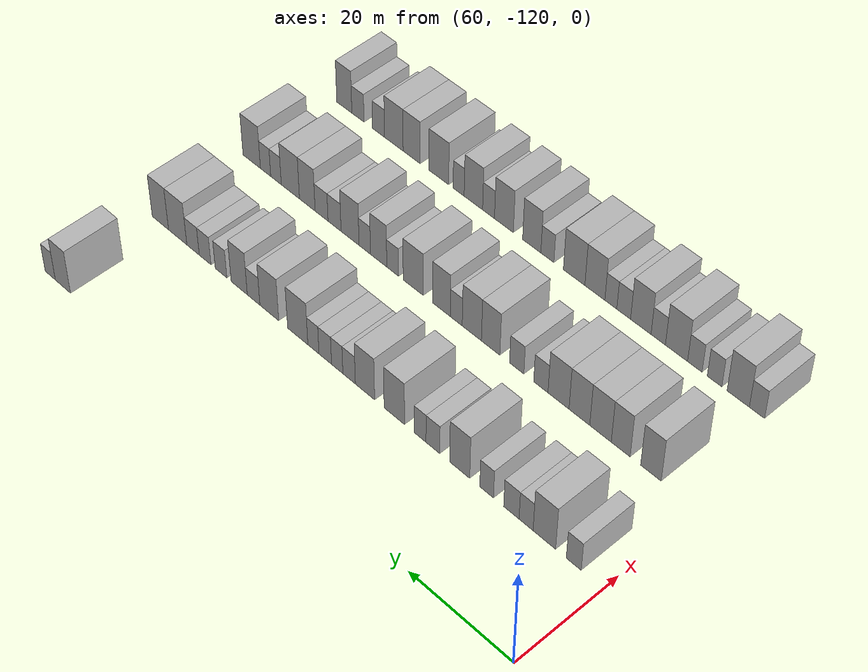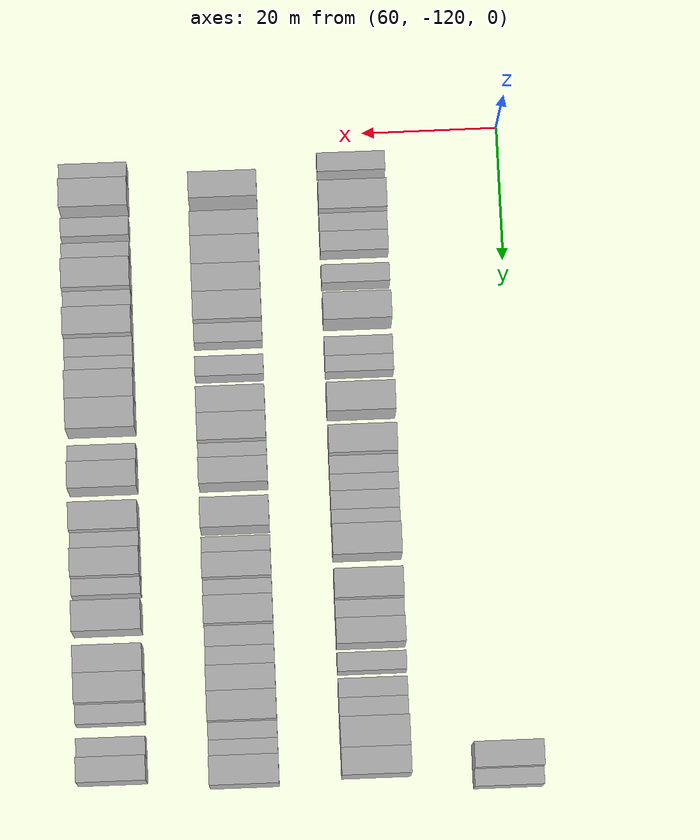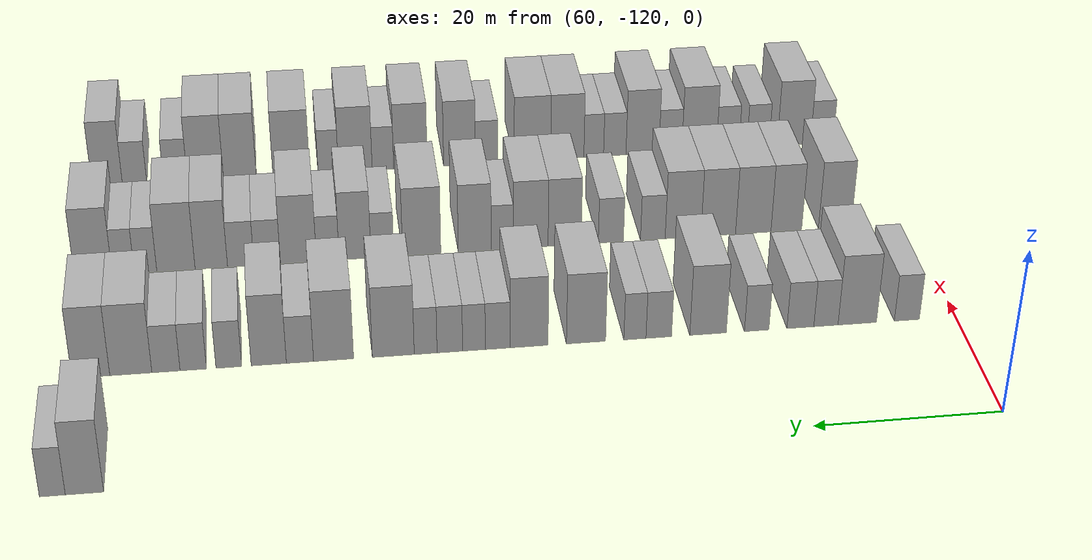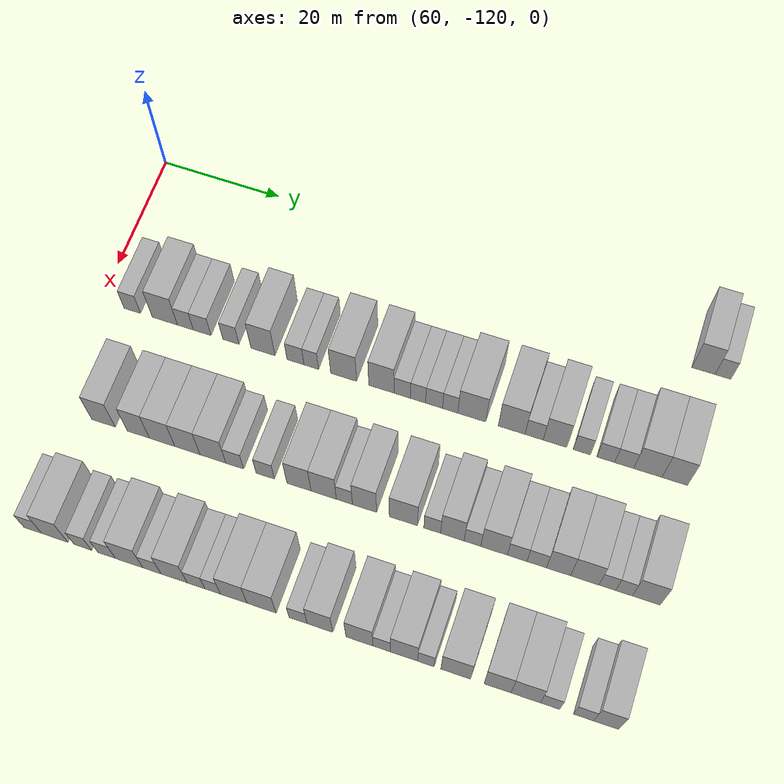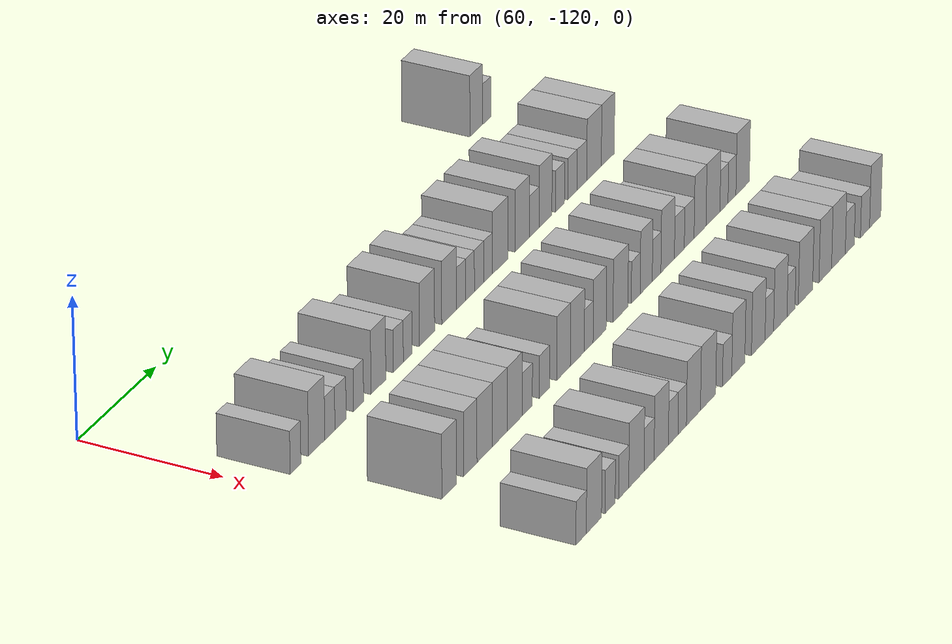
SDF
<sdf version="1.6">
 <world name="default">
  <model name="building_439">
   <static>1</static>
   <pose>63.0000 -26.5140 0 0.000000 0.000000 0.000000</pose>
   <link name="link">
    <pose>0 0 4.50 0 0 0</pose>
    <collision name="collision"><geometry><box><size>10.0000 3.7161 9.0000</size></box></geometry></collision>
    <visual name="visual">
     <cast_shadows>0</cast_shadows>
     <geometry><box><size>10.0000 3.7161 9.0000</size></box></geometry>
     <material>
      <script>
       <uri>model://HANNAS_wall/materials/scripts</uri>
       <uri>model://HANNAS_wall/materials/textures</uri>
       <name>vrc/HANNAS_wall</name>
      </script>
     </material>
    </visual>
   </link>
  </model>
  <model name="building_440">
   <static>1</static>
   <pose>63.0000 -23.4009 0 0.000000 0.000000 0.000000</pose>
   <link name="link">
    <pose>0 0 3.00 0 0 0</pose>
    <collision name="collision"><geometry><box><size>10.0000 2.5101 6.0000</size></box></geometry></collision>
    <visual name="visual">
     <cast_shadows>0</cast_shadows>
     <geometry><box><size>10.0000 2.5101 6.0000</size></box></geometry>
     <material>
      <script>
       <uri>model://HANNAS_wall/materials/scripts</uri>
       <uri>model://HANNAS_wall/materials/textures</uri>
       <name>vrc/HANNAS_wall</name>
      </script>
     </material>
    </visual>
   </link>
  </model>
  <model name="building_604">
   <static>1</static>
   <pose>82.0000 -114.4973 0 0.000000 0.000000 0.000000</pose>
   <link name="link">
    <pose>0 0 3.00 0 0 0</pose>
    <collision name="collision"><geometry><box><size>10.0000 2.8064 6.0000</size></box></geometry></collision>
    <visual name="visual">
     <cast_shadows>0</cast_shadows>
     <geometry><box><size>10.0000 2.8064 6.0000</size></box></geometry>
     <material>
      <script>
       <uri>model://HANNAS_wall/materials/scripts</uri>
       <uri>model://HANNAS_wall/materials/textures</uri>
       <name>vrc/HANNAS_wall</name>
      </script>
     </material>
    </visual>
   </link>
  </model>
  <model name="building_605">
   <static>1</static>
   <pose>82.0000 -108.9467 0 0.000000 0.000000 0.000000</pose>
   <link name="link">
    <pose>0 0 4.50 0 0 0</pose>
    <collision name="collision"><geometry><box><size>10.0000 4.2948 9.0000</size></box></geometry></collision>
    <visual name="visual">
     <cast_shadows>0</cast_shadows>
     <geometry><box><size>10.0000 4.2948 9.0000</size></box></geometry>
     <material>
      <script>
       <uri>model://HANNAS_wall/materials/scripts</uri>
       <uri>model://HANNAS_wall/materials/textures</uri>
       <name>vrc/HANNAS_wall</name>
      </script>
     </material>
    </visual>
   </link>
  </model>
  <model name="building_606">
   <static>1</static>
   <pose>82.0000 -105.4495 0 0.000000 0.000000 0.000000</pose>
   <link name="link">
    <pose>0 0 3.00 0 0 0</pose>
    <collision name="collision"><geometry><box><size>10.0000 2.6997 6.0000</size></box></geometry></collision>
    <visual name="visual">
     <cast_shadows>0</cast_shadows>
     <geometry><box><size>10.0000 2.6997 6.0000</size></box></geometry>
     <material>
      <script>
       <uri>model://HANNAS_wall/materials/scripts</uri>
       <uri>model://HANNAS_wall/materials/textures</uri>
       <name>vrc/HANNAS_wall</name>
      </script>
     </material>
    </visual>
   </link>
  </model>
  <model name="building_607">
   <static>1</static>
   <pose>82.0000 -102.6071 0 0.000000 0.000000 0.000000</pose>
   <link name="link">
    <pose>0 0 3.00 0 0 0</pose>
    <collision name="collision"><geometry><box><size>10.0000 2.9852 6.0000</size></box></geometry></collision>
    <visual name="visual">
     <cast_shadows>0</cast_shadows>
     <geometry><box><size>10.0000 2.9852 6.0000</size></box></geometry>
     <material>
      <script>
       <uri>model://HANNAS_wall/materials/scripts</uri>
       <uri>model://HANNAS_wall/materials/textures</uri>
       <name>vrc/HANNAS_wall</name>
      </script>
     </material>
    </visual>
   </link>
  </model>
  <model name="building_608">
   <static>1</static>
   <pose>82.0000 -97.7622 0 0.000000 0.000000 0.000000</pose>
   <link name="link">
    <pose>0 0 3.00 0 0 0</pose>
    <collision name="collision"><geometry><box><size>10.0000 2.7046 6.0000</size></box></geometry></collision>
    <visual name="visual">
     <cast_shadows>0</cast_shadows>
     <geometry><box><size>10.0000 2.7046 6.0000</size></box></geometry>
     <material>
      <script>
       <uri>model://HANNAS_wall/materials/scripts</uri>
       <uri>model://HANNAS_wall/materials/textures</uri>
       <name>vrc/HANNAS_wall</name>
      </script>
     </material>
    </visual>
   </link>
  </model>
  <model name="building_609">
   <static>1</static>
   <pose>82.0000 -92.3943 0 0.000000 0.000000 0.000000</pose>
   <link name="link">
    <pose>0 0 4.50 0 0 0</pose>
    <collision name="collision"><geometry><box><size>10.0000 4.0311 9.0000</size></box></geometry></collision>
    <visual name="visual">
     <cast_shadows>0</cast_shadows>
     <geometry><box><size>10.0000 4.0311 9.0000</size></box></geometry>
     <material>
      <script>
       <uri>model://HANNAS_wall/materials/scripts</uri>
       <uri>model://HANNAS_wall/materials/textures</uri>
       <name>vrc/HANNAS_wall</name>
      </script>
     </material>
    </visual>
   </link>
  </model>
  <model name="building_610">
   <static>1</static>
   <pose>82.0000 -86.9750 0 0.000000 0.000000 0.000000</pose>
   <link name="link">
    <pose>0 0 3.00 0 0 0</pose>
    <collision name="collision"><geometry><box><size>10.0000 2.8075 6.0000</size></box></geometry></collision>
    <visual name="visual">
     <cast_shadows>0</cast_shadows>
     <geometry><box><size>10.0000 2.8075 6.0000</size></box></geometry>
     <material>
      <script>
       <uri>model://HANNAS_wall/materials/scripts</uri>
       <uri>model://HANNAS_wall/materials/textures</uri>
       <name>vrc/HANNAS_wall</name>
      </script>
     </material>
    </visual>
   </link>
  </model>
  <model name="building_611">
   <static>1</static>
   <pose>82.0000 -84.3604 0 0.000000 0.000000 0.000000</pose>
   <link name="link">
    <pose>0 0 3.00 0 0 0</pose>
    <collision name="collision"><geometry><box><size>10.0000 2.4218 6.0000</size></box></geometry></collision>
    <visual name="visual">
     <cast_shadows>0</cast_shadows>
     <geometry><box><size>10.0000 2.4218 6.0000</size></box></geometry>
     <material>
      <script>
       <uri>model://HANNAS_wall/materials/scripts</uri>
       <uri>model://HANNAS_wall/materials/textures</uri>
       <name>vrc/HANNAS_wall</name>
      </script>
     </material>
    </visual>
   </link>
  </model>
  <model name="building_612">
   <static>1</static>
   <pose>82.0000 -79.0186 0 0.000000 0.000000 0.000000</pose>
   <link name="link">
    <pose>0 0 4.50 0 0 0</pose>
    <collision name="collision"><geometry><box><size>10.0000 4.2618 9.0000</size></box></geometry></collision>
    <visual name="visual">
     <cast_shadows>0</cast_shadows>
     <geometry><box><size>10.0000 4.2618 9.0000</size></box></geometry>
     <material>
      <script>
       <uri>model://HANNAS_wall/materials/scripts</uri>
       <uri>model://HANNAS_wall/materials/textures</uri>
       <name>vrc/HANNAS_wall</name>
      </script>
     </material>
    </visual>
   </link>
  </model>
  <model name="building_613">
   <static>1</static>
   <pose>82.0000 -72.8369 0 0.000000 0.000000 0.000000</pose>
   <link name="link">
    <pose>0 0 4.50 0 0 0</pose>
    <collision name="collision"><geometry><box><size>10.0000 4.1015 9.0000</size></box></geometry></collision>
    <visual name="visual">
     <cast_shadows>0</cast_shadows>
     <geometry><box><size>10.0000 4.1015 9.0000</size></box></geometry>
     <material>
      <script>
       <uri>model://HANNAS_wall/materials/scripts</uri>
       <uri>model://HANNAS_wall/materials/textures</uri>
       <name>vrc/HANNAS_wall</name>
      </script>
     </material>
    </visual>
   </link>
  </model>
  <model name="building_614">
   <static>1</static>
   <pose>82.0000 -69.4420 0 0.000000 0.000000 0.000000</pose>
   <link name="link">
    <pose>0 0 3.00 0 0 0</pose>
    <collision name="collision"><geometry><box><size>10.0000 2.6884 6.0000</size></box></geometry></collision>
    <visual name="visual">
     <cast_shadows>0</cast_shadows>
     <geometry><box><size>10.0000 2.6884 6.0000</size></box></geometry>
     <material>
      <script>
       <uri>model://HANNAS_wall/materials/scripts</uri>
       <uri>model://HANNAS_wall/materials/textures</uri>
       <name>vrc/HANNAS_wall</name>
      </script>
     </material>
    </visual>
   </link>
  </model>
  <model name="building_615">
   <static>1</static>
   <pose>82.0000 -66.8742 0 0.000000 0.000000 0.000000</pose>
   <link name="link">
    <pose>0 0 3.00 0 0 0</pose>
    <collision name="collision"><geometry><box><size>10.0000 2.4471 6.0000</size></box></geometry></collision>
    <visual name="visual">
     <cast_shadows>0</cast_shadows>
     <geometry><box><size>10.0000 2.4471 6.0000</size></box></geometry>
     <material>
      <script>
       <uri>model://HANNAS_wall/materials/scripts</uri>
       <uri>model://HANNAS_wall/materials/textures</uri>
       <name>vrc/HANNAS_wall</name>
      </script>
     </material>
    </visual>
   </link>
  </model>
  <model name="building_616">
   <static>1</static>
   <pose>82.0000 -64.2776 0 0.000000 0.000000 0.000000</pose>
   <link name="link">
    <pose>0 0 3.00 0 0 0</pose>
    <collision name="collision"><geometry><box><size>10.0000 2.7462 6.0000</size></box></geometry></collision>
    <visual name="visual">
     <cast_shadows>0</cast_shadows>
     <geometry><box><size>10.0000 2.7462 6.0000</size></box></geometry>
     <material>
      <script>
       <uri>model://HANNAS_wall/materials/scripts</uri>
       <uri>model://HANNAS_wall/materials/textures</uri>
       <name>vrc/HANNAS_wall</name>
      </script>
     </material>
    </visual>
   </link>
  </model>
  <model name="building_617">
   <static>1</static>
   <pose>82.0000 -61.6796 0 0.000000 0.000000 0.000000</pose>
   <link name="link">
    <pose>0 0 3.00 0 0 0</pose>
    <collision name="collision"><geometry><box><size>10.0000 2.4497 6.0000</size></box></geometry></collision>
    <visual name="visual">
     <cast_shadows>0</cast_shadows>
     <geometry><box><size>10.0000 2.4497 6.0000</size></box></geometry>
     <material>
      <script>
       <uri>model://HANNAS_wall/materials/scripts</uri>
       <uri>model://HANNAS_wall/materials/textures</uri>
       <name>vrc/HANNAS_wall</name>
      </script>
     </material>
    </visual>
   </link>
  </model>
  <model name="building_618">
   <static>1</static>
   <pose>82.0000 -58.2125 0 0.000000 0.000000 0.000000</pose>
   <link name="link">
    <pose>0 0 4.50 0 0 0</pose>
    <collision name="collision"><geometry><box><size>10.0000 4.4845 9.0000</size></box></geometry></collision>
    <visual name="visual">
     <cast_shadows>0</cast_shadows>
     <geometry><box><size>10.0000 4.4845 9.0000</size></box></geometry>
     <material>
      <script>
       <uri>model://HANNAS_wall/materials/scripts</uri>
       <uri>model://HANNAS_wall/materials/textures</uri>
       <name>vrc/HANNAS_wall</name>
      </script>
     </material>
    </visual>
   </link>
  </model>
  <model name="building_619">
   <static>1</static>
   <pose>82.0000 -51.8386 0 0.000000 0.000000 0.000000</pose>
   <link name="link">
    <pose>0 0 4.50 0 0 0</pose>
    <collision name="collision"><geometry><box><size>10.0000 4.2635 9.0000</size></box></geometry></collision>
    <visual name="visual">
     <cast_shadows>0</cast_shadows>
     <geometry><box><size>10.0000 4.2635 9.0000</size></box></geometry>
     <material>
      <script>
       <uri>model://HANNAS_wall/materials/scripts</uri>
       <uri>model://HANNAS_wall/materials/textures</uri>
       <name>vrc/HANNAS_wall</name>
      </script>
     </material>
    </visual>
   </link>
  </model>
  <model name="building_620">
   <static>1</static>
   <pose>82.0000 -48.2661 0 0.000000 0.000000 0.000000</pose>
   <link name="link">
    <pose>0 0 3.00 0 0 0</pose>
    <collision name="collision"><geometry><box><size>10.0000 2.8814 6.0000</size></box></geometry></collision>
    <visual name="visual">
     <cast_shadows>0</cast_shadows>
     <geometry><box><size>10.0000 2.8814 6.0000</size></box></geometry>
     <material>
      <script>
       <uri>model://HANNAS_wall/materials/scripts</uri>
       <uri>model://HANNAS_wall/materials/textures</uri>
       <name>vrc/HANNAS_wall</name>
      </script>
     </material>
    </visual>
   </link>
  </model>
  <model name="building_621">
   <static>1</static>
   <pose>82.0000 -44.9633 0 0.000000 0.000000 0.000000</pose>
   <link name="link">
    <pose>0 0 4.50 0 0 0</pose>
    <collision name="collision"><geometry><box><size>10.0000 3.7242 9.0000</size></box></geometry></collision>
    <visual name="visual">
     <cast_shadows>0</cast_shadows>
     <geometry><box><size>10.0000 3.7242 9.0000</size></box></geometry>
     <material>
      <script>
       <uri>model://HANNAS_wall/materials/scripts</uri>
       <uri>model://HANNAS_wall/materials/textures</uri>
       <name>vrc/HANNAS_wall</name>
      </script>
     </material>
    </visual>
   </link>
  </model>
  <model name="building_622">
   <static>1</static>
   <pose>82.0000 -40.7424 0 0.000000 0.000000 0.000000</pose>
   <link name="link">
    <pose>0 0 3.00 0 0 0</pose>
    <collision name="collision"><geometry><box><size>10.0000 2.7176 6.0000</size></box></geometry></collision>
    <visual name="visual">
     <cast_shadows>0</cast_shadows>
     <geometry><box><size>10.0000 2.7176 6.0000</size></box></geometry>
     <material>
      <script>
       <uri>model://HANNAS_wall/materials/scripts</uri>
       <uri>model://HANNAS_wall/materials/textures</uri>
       <name>vrc/HANNAS_wall</name>
      </script>
     </material>
    </visual>
   </link>
  </model>
  <model name="building_623">
   <static>1</static>
   <pose>82.0000 -36.9959 0 0.000000 0.000000 0.000000</pose>
   <link name="link">
    <pose>0 0 3.00 0 0 0</pose>
    <collision name="collision"><geometry><box><size>10.0000 2.7754 6.0000</size></box></geometry></collision>
    <visual name="visual">
     <cast_shadows>0</cast_shadows>
     <geometry><box><size>10.0000 2.7754 6.0000</size></box></geometry>
     <material>
      <script>
       <uri>model://HANNAS_wall/materials/scripts</uri>
       <uri>model://HANNAS_wall/materials/textures</uri>
       <name>vrc/HANNAS_wall</name>
      </script>
     </material>
    </visual>
   </link>
  </model>
  <model name="building_624">
   <static>1</static>
   <pose>82.0000 -34.1287 0 0.000000 0.000000 0.000000</pose>
   <link name="link">
    <pose>0 0 3.00 0 0 0</pose>
    <collision name="collision"><geometry><box><size>10.0000 2.9592 6.0000</size></box></geometry></collision>
    <visual name="visual">
     <cast_shadows>0</cast_shadows>
     <geometry><box><size>10.0000 2.9592 6.0000</size></box></geometry>
     <material>
      <script>
       <uri>model://HANNAS_wall/materials/scripts</uri>
       <uri>model://HANNAS_wall/materials/textures</uri>
       <name>vrc/HANNAS_wall</name>
      </script>
     </material>
    </visual>
   </link>
  </model>
  <model name="building_625">
   <static>1</static>
   <pose>82.0000 -30.4496 0 0.000000 0.000000 0.000000</pose>
   <link name="link">
    <pose>0 0 4.50 0 0 0</pose>
    <collision name="collision"><geometry><box><size>10.0000 4.3990 9.0000</size></box></geometry></collision>
    <visual name="visual">
     <cast_shadows>0</cast_shadows>
     <geometry><box><size>10.0000 4.3990 9.0000</size></box></geometry>
     <material>
      <script>
       <uri>model://HANNAS_wall/materials/scripts</uri>
       <uri>model://HANNAS_wall/materials/textures</uri>
       <name>vrc/HANNAS_wall</name>
      </script>
     </material>
    </visual>
   </link>
  </model>
  <model name="building_626">
   <static>1</static>
   <pose>82.0000 -26.2749 0 0.000000 0.000000 0.000000</pose>
   <link name="link">
    <pose>0 0 4.50 0 0 0</pose>
    <collision name="collision"><geometry><box><size>10.0000 3.9504 9.0000</size></box></geometry></collision>
    <visual name="visual">
     <cast_shadows>0</cast_shadows>
     <geometry><box><size>10.0000 3.9504 9.0000</size></box></geometry>
     <material>
      <script>
       <uri>model://HANNAS_wall/materials/scripts</uri>
       <uri>model://HANNAS_wall/materials/textures</uri>
       <name>vrc/HANNAS_wall</name>
      </script>
     </material>
    </visual>
   </link>
  </model>
  <model name="building_788">
   <static>1</static>
   <pose>101.0000 -111.1524 0 0.000000 0.000000 0.000000</pose>
   <link name="link">
    <pose>0 0 4.50 0 0 0</pose>
    <collision name="collision"><geometry><box><size>10.0000 3.8929 9.0000</size></box></geometry></collision>
    <visual name="visual">
     <cast_shadows>0</cast_shadows>
     <geometry><box><size>10.0000 3.8929 9.0000</size></box></geometry>
     <material>
      <script>
       <uri>model://HANNAS_wall/materials/scripts</uri>
       <uri>model://HANNAS_wall/materials/textures</uri>
       <name>vrc/HANNAS_wall</name>
      </script>
     </material>
    </visual>
   </link>
  </model>
  <model name="building_789">
   <static>1</static>
   <pose>101.0000 -105.3858 0 0.000000 0.000000 0.000000</pose>
   <link name="link">
    <pose>0 0 4.50 0 0 0</pose>
    <collision name="collision"><geometry><box><size>10.0000 3.6404 9.0000</size></box></geometry></collision>
    <visual name="visual">
     <cast_shadows>0</cast_shadows>
     <geometry><box><size>10.0000 3.6404 9.0000</size></box></geometry>
     <material>
      <script>
       <uri>model://HANNAS_wall/materials/scripts</uri>
       <uri>model://HANNAS_wall/materials/textures</uri>
       <name>vrc/HANNAS_wall</name>
      </script>
     </material>
    </visual>
   </link>
  </model>
  <model name="building_790">
   <static>1</static>
   <pose>101.0000 -101.4711 0 0.000000 0.000000 0.000000</pose>
   <link name="link">
    <pose>0 0 4.50 0 0 0</pose>
    <collision name="collision"><geometry><box><size>10.0000 4.1890 9.0000</size></box></geometry></collision>
    <visual name="visual">
     <cast_shadows>0</cast_shadows>
     <geometry><box><size>10.0000 4.1890 9.0000</size></box></geometry>
     <material>
      <script>
       <uri>model://HANNAS_wall/materials/scripts</uri>
       <uri>model://HANNAS_wall/materials/textures</uri>
       <name>vrc/HANNAS_wall</name>
      </script>
     </material>
    </visual>
   </link>
  </model>
  <model name="building_791">
   <static>1</static>
   <pose>101.0000 -97.3296 0 0.000000 0.000000 0.000000</pose>
   <link name="link">
    <pose>0 0 4.50 0 0 0</pose>
    <collision name="collision"><geometry><box><size>10.0000 4.0942 9.0000</size></box></geometry></collision>
    <visual name="visual">
     <cast_shadows>0</cast_shadows>
     <geometry><box><size>10.0000 4.0942 9.0000</size></box></geometry>
     <material>
      <script>
       <uri>model://HANNAS_wall/materials/scripts</uri>
       <uri>model://HANNAS_wall/materials/textures</uri>
       <name>vrc/HANNAS_wall</name>
      </script>
     </material>
    </visual>
   </link>
  </model>
  <model name="building_792">
   <static>1</static>
   <pose>101.0000 -93.1846 0 0.000000 0.000000 0.000000</pose>
   <link name="link">
    <pose>0 0 4.50 0 0 0</pose>
    <collision name="collision"><geometry><box><size>10.0000 4.1958 9.0000</size></box></geometry></collision>
    <visual name="visual">
     <cast_shadows>0</cast_shadows>
     <geometry><box><size>10.0000 4.1958 9.0000</size></box></geometry>
     <material>
      <script>
       <uri>model://HANNAS_wall/materials/scripts</uri>
       <uri>model://HANNAS_wall/materials/textures</uri>
       <name>vrc/HANNAS_wall</name>
      </script>
     </material>
    </visual>
   </link>
  </model>
  <model name="building_793">
   <static>1</static>
   <pose>101.0000 -89.6413 0 0.000000 0.000000 0.000000</pose>
   <link name="link">
    <pose>0 0 3.00 0 0 0</pose>
    <collision name="collision"><geometry><box><size>10.0000 2.8908 6.0000</size></box></geometry></collision>
    <visual name="visual">
     <cast_shadows>0</cast_shadows>
     <geometry><box><size>10.0000 2.8908 6.0000</size></box></geometry>
     <material>
      <script>
       <uri>model://HANNAS_wall/materials/scripts</uri>
       <uri>model://HANNAS_wall/materials/textures</uri>
       <name>vrc/HANNAS_wall</name>
      </script>
     </material>
    </visual>
   </link>
  </model>
  <model name="building_794">
   <static>1</static>
   <pose>101.0000 -84.7285 0 0.000000 0.000000 0.000000</pose>
   <link name="link">
    <pose>0 0 3.00 0 0 0</pose>
    <collision name="collision"><geometry><box><size>10.0000 2.9348 6.0000</size></box></geometry></collision>
    <visual name="visual">
     <cast_shadows>0</cast_shadows>
     <geometry><box><size>10.0000 2.9348 6.0000</size></box></geometry>
     <material>
      <script>
       <uri>model://HANNAS_wall/materials/scripts</uri>
       <uri>model://HANNAS_wall/materials/textures</uri>
       <name>vrc/HANNAS_wall</name>
      </script>
     </material>
    </visual>
   </link>
  </model>
  <model name="building_795">
   <static>1</static>
   <pose>101.0000 -79.3390 0 0.000000 0.000000 0.000000</pose>
   <link name="link">
    <pose>0 0 4.50 0 0 0</pose>
    <collision name="collision"><geometry><box><size>10.0000 3.8440 9.0000</size></box></geometry></collision>
    <visual name="visual">
     <cast_shadows>0</cast_shadows>
     <geometry><box><size>10.0000 3.8440 9.0000</size></box></geometry>
     <material>
      <script>
       <uri>model://HANNAS_wall/materials/scripts</uri>
       <uri>model://HANNAS_wall/materials/textures</uri>
       <name>vrc/HANNAS_wall</name>
      </script>
     </material>
    </visual>
   </link>
  </model>
  <model name="building_796">
   <static>1</static>
   <pose>101.0000 -75.3961 0 0.000000 0.000000 0.000000</pose>
   <link name="link">
    <pose>0 0 4.50 0 0 0</pose>
    <collision name="collision"><geometry><box><size>10.0000 4.0419 9.0000</size></box></geometry></collision>
    <visual name="visual">
     <cast_shadows>0</cast_shadows>
     <geometry><box><size>10.0000 4.0419 9.0000</size></box></geometry>
     <material>
      <script>
       <uri>model://HANNAS_wall/materials/scripts</uri>
       <uri>model://HANNAS_wall/materials/textures</uri>
       <name>vrc/HANNAS_wall</name>
      </script>
     </material>
    </visual>
   </link>
  </model>
  <model name="building_797">
   <static>1</static>
   <pose>101.0000 -72.1025 0 0.000000 0.000000 0.000000</pose>
   <link name="link">
    <pose>0 0 3.00 0 0 0</pose>
    <collision name="collision"><geometry><box><size>10.0000 2.5452 6.0000</size></box></geometry></collision>
    <visual name="visual">
     <cast_shadows>0</cast_shadows>
     <geometry><box><size>10.0000 2.5452 6.0000</size></box></geometry>
     <material>
      <script>
       <uri>model://HANNAS_wall/materials/scripts</uri>
       <uri>model://HANNAS_wall/materials/textures</uri>
       <name>vrc/HANNAS_wall</name>
      </script>
     </material>
    </visual>
   </link>
  </model>
  <model name="building_798">
   <static>1</static>
   <pose>101.0000 -68.9304 0 0.000000 0.000000 0.000000</pose>
   <link name="link">
    <pose>0 0 4.50 0 0 0</pose>
    <collision name="collision"><geometry><box><size>10.0000 3.7990 9.0000</size></box></geometry></collision>
    <visual name="visual">
     <cast_shadows>0</cast_shadows>
     <geometry><box><size>10.0000 3.7990 9.0000</size></box></geometry>
     <material>
      <script>
       <uri>model://HANNAS_wall/materials/scripts</uri>
       <uri>model://HANNAS_wall/materials/textures</uri>
       <name>vrc/HANNAS_wall</name>
      </script>
     </material>
    </visual>
   </link>
  </model>
  <model name="building_799">
   <static>1</static>
   <pose>101.0000 -62.8367 0 0.000000 0.000000 0.000000</pose>
   <link name="link">
    <pose>0 0 4.50 0 0 0</pose>
    <collision name="collision"><geometry><box><size>10.0000 4.3884 9.0000</size></box></geometry></collision>
    <visual name="visual">
     <cast_shadows>0</cast_shadows>
     <geometry><box><size>10.0000 4.3884 9.0000</size></box></geometry>
     <material>
      <script>
       <uri>model://HANNAS_wall/materials/scripts</uri>
       <uri>model://HANNAS_wall/materials/textures</uri>
       <name>vrc/HANNAS_wall</name>
      </script>
     </material>
    </visual>
   </link>
  </model>
  <model name="building_800">
   <static>1</static>
   <pose>101.0000 -58.3310 0 0.000000 0.000000 0.000000</pose>
   <link name="link">
    <pose>0 0 3.00 0 0 0</pose>
    <collision name="collision"><geometry><box><size>10.0000 2.6231 6.0000</size></box></geometry></collision>
    <visual name="visual">
     <cast_shadows>0</cast_shadows>
     <geometry><box><size>10.0000 2.6231 6.0000</size></box></geometry>
     <material>
      <script>
       <uri>model://HANNAS_wall/materials/scripts</uri>
       <uri>model://HANNAS_wall/materials/textures</uri>
       <name>vrc/HANNAS_wall</name>
      </script>
     </material>
    </visual>
   </link>
  </model>
  <model name="building_801">
   <static>1</static>
   <pose>101.0000 -55.2051 0 0.000000 0.000000 0.000000</pose>
   <link name="link">
    <pose>0 0 4.50 0 0 0</pose>
    <collision name="collision"><geometry><box><size>10.0000 3.6287 9.0000</size></box></geometry></collision>
    <visual name="visual">
     <cast_shadows>0</cast_shadows>
     <geometry><box><size>10.0000 3.6287 9.0000</size></box></geometry>
     <material>
      <script>
       <uri>model://HANNAS_wall/materials/scripts</uri>
       <uri>model://HANNAS_wall/materials/textures</uri>
       <name>vrc/HANNAS_wall</name>
      </script>
     </material>
    </visual>
   </link>
  </model>
  <model name="building_802">
   <static>1</static>
   <pose>101.0000 -52.1007 0 0.000000 0.000000 0.000000</pose>
   <link name="link">
    <pose>0 0 3.00 0 0 0</pose>
    <collision name="collision"><geometry><box><size>10.0000 2.5800 6.0000</size></box></geometry></collision>
    <visual name="visual">
     <cast_shadows>0</cast_shadows>
     <geometry><box><size>10.0000 2.5800 6.0000</size></box></geometry>
     <material>
      <script>
       <uri>model://HANNAS_wall/materials/scripts</uri>
       <uri>model://HANNAS_wall/materials/textures</uri>
       <name>vrc/HANNAS_wall</name>
      </script>
     </material>
    </visual>
   </link>
  </model>
  <model name="building_803">
   <static>1</static>
   <pose>101.0000 -48.7690 0 0.000000 0.000000 0.000000</pose>
   <link name="link">
    <pose>0 0 4.50 0 0 0</pose>
    <collision name="collision"><geometry><box><size>10.0000 4.0835 9.0000</size></box></geometry></collision>
    <visual name="visual">
     <cast_shadows>0</cast_shadows>
     <geometry><box><size>10.0000 4.0835 9.0000</size></box></geometry>
     <material>
      <script>
       <uri>model://HANNAS_wall/materials/scripts</uri>
       <uri>model://HANNAS_wall/materials/textures</uri>
       <name>vrc/HANNAS_wall</name>
      </script>
     </material>
    </visual>
   </link>
  </model>
  <model name="building_804">
   <static>1</static>
   <pose>101.0000 -45.2300 0 0.000000 0.000000 0.000000</pose>
   <link name="link">
    <pose>0 0 3.00 0 0 0</pose>
    <collision name="collision"><geometry><box><size>10.0000 2.9944 6.0000</size></box></geometry></collision>
    <visual name="visual">
     <cast_shadows>0</cast_shadows>
     <geometry><box><size>10.0000 2.9944 6.0000</size></box></geometry>
     <material>
      <script>
       <uri>model://HANNAS_wall/materials/scripts</uri>
       <uri>model://HANNAS_wall/materials/textures</uri>
       <name>vrc/HANNAS_wall</name>
      </script>
     </material>
    </visual>
   </link>
  </model>
  <model name="building_805">
   <static>1</static>
   <pose>101.0000 -42.2397 0 0.000000 0.000000 0.000000</pose>
   <link name="link">
    <pose>0 0 3.00 0 0 0</pose>
    <collision name="collision"><geometry><box><size>10.0000 2.9863 6.0000</size></box></geometry></collision>
    <visual name="visual">
     <cast_shadows>0</cast_shadows>
     <geometry><box><size>10.0000 2.9863 6.0000</size></box></geometry>
     <material>
      <script>
       <uri>model://HANNAS_wall/materials/scripts</uri>
       <uri>model://HANNAS_wall/materials/textures</uri>
       <name>vrc/HANNAS_wall</name>
      </script>
     </material>
    </visual>
   </link>
  </model>
  <model name="building_806">
   <static>1</static>
   <pose>101.0000 -38.9179 0 0.000000 0.000000 0.000000</pose>
   <link name="link">
    <pose>0 0 4.50 0 0 0</pose>
    <collision name="collision"><geometry><box><size>10.0000 3.6572 9.0000</size></box></geometry></collision>
    <visual name="visual">
     <cast_shadows>0</cast_shadows>
     <geometry><box><size>10.0000 3.6572 9.0000</size></box></geometry>
     <material>
      <script>
       <uri>model://HANNAS_wall/materials/scripts</uri>
       <uri>model://HANNAS_wall/materials/textures</uri>
       <name>vrc/HANNAS_wall</name>
      </script>
     </material>
    </visual>
   </link>
  </model>
  <model name="building_807">
   <static>1</static>
   <pose>101.0000 -34.9392 0 0.000000 0.000000 0.000000</pose>
   <link name="link">
    <pose>0 0 4.50 0 0 0</pose>
    <collision name="collision"><geometry><box><size>10.0000 4.3002 9.0000</size></box></geometry></collision>
    <visual name="visual">
     <cast_shadows>0</cast_shadows>
     <geometry><box><size>10.0000 4.3002 9.0000</size></box></geometry>
     <material>
      <script>
       <uri>model://HANNAS_wall/materials/scripts</uri>
       <uri>model://HANNAS_wall/materials/textures</uri>
       <name>vrc/HANNAS_wall</name>
      </script>
     </material>
    </visual>
   </link>
  </model>
  <model name="building_808">
   <static>1</static>
   <pose>101.0000 -31.5332 0 0.000000 0.000000 0.000000</pose>
   <link name="link">
    <pose>0 0 3.00 0 0 0</pose>
    <collision name="collision"><geometry><box><size>10.0000 2.5117 6.0000</size></box></geometry></collision>
    <visual name="visual">
     <cast_shadows>0</cast_shadows>
     <geometry><box><size>10.0000 2.5117 6.0000</size></box></geometry>
     <material>
      <script>
       <uri>model://HANNAS_wall/materials/scripts</uri>
       <uri>model://HANNAS_wall/materials/textures</uri>
       <name>vrc/HANNAS_wall</name>
      </script>
     </material>
    </visual>
   </link>
  </model>
  <model name="building_809">
   <static>1</static>
   <pose>101.0000 -29.0409 0 0.000000 0.000000 0.000000</pose>
   <link name="link">
    <pose>0 0 3.00 0 0 0</pose>
    <collision name="collision"><geometry><box><size>10.0000 2.4730 6.0000</size></box></geometry></collision>
    <visual name="visual">
     <cast_shadows>0</cast_shadows>
     <geometry><box><size>10.0000 2.4730 6.0000</size></box></geometry>
     <material>
      <script>
       <uri>model://HANNAS_wall/materials/scripts</uri>
       <uri>model://HANNAS_wall/materials/textures</uri>
       <name>vrc/HANNAS_wall</name>
      </script>
     </material>
    </visual>
   </link>
  </model>
  <model name="building_810">
   <static>1</static>
   <pose>101.0000 -25.6997 0 0.000000 0.000000 0.000000</pose>
   <link name="link">
    <pose>0 0 4.50 0 0 0</pose>
    <collision name="collision"><geometry><box><size>10.0000 4.2095 9.0000</size></box></geometry></collision>
    <visual name="visual">
     <cast_shadows>0</cast_shadows>
     <geometry><box><size>10.0000 4.2095 9.0000</size></box></geometry>
     <material>
      <script>
       <uri>model://HANNAS_wall/materials/scripts</uri>
       <uri>model://HANNAS_wall/materials/textures</uri>
       <name>vrc/HANNAS_wall</name>
      </script>
     </material>
    </visual>
   </link>
  </model>
  <model name="building_950">
   <static>1</static>
   <pose>120.0000 -114.2199 0 0.000000 0.000000 0.000000</pose>
   <link name="link">
    <pose>0 0 3.00 0 0 0</pose>
    <collision name="collision"><geometry><box><size>10.0000 2.8708 6.0000</size></box></geometry></collision>
    <visual name="visual">
     <cast_shadows>0</cast_shadows>
     <geometry><box><size>10.0000 2.8708 6.0000</size></box></geometry>
     <material>
      <script>
       <uri>model://HANNAS_wall/materials/scripts</uri>
       <uri>model://HANNAS_wall/materials/textures</uri>
       <name>vrc/HANNAS_wall</name>
      </script>
     </material>
    </visual>
   </link>
  </model>
  <model name="building_951">
   <static>1</static>
   <pose>120.0000 -110.6735 0 0.000000 0.000000 0.000000</pose>
   <link name="link">
    <pose>0 0 4.50 0 0 0</pose>
    <collision name="collision"><geometry><box><size>10.0000 4.2219 9.0000</size></box></geometry></collision>
    <visual name="visual">
     <cast_shadows>0</cast_shadows>
     <geometry><box><size>10.0000 4.2219 9.0000</size></box></geometry>
     <material>
      <script>
       <uri>model://HANNAS_wall/materials/scripts</uri>
       <uri>model://HANNAS_wall/materials/textures</uri>
       <name>vrc/HANNAS_wall</name>
      </script>
     </material>
    </visual>
   </link>
  </model>
  <model name="building_952">
   <static>1</static>
   <pose>120.0000 -106.1589 0 0.000000 0.000000 0.000000</pose>
   <link name="link">
    <pose>0 0 3.00 0 0 0</pose>
    <collision name="collision"><geometry><box><size>10.0000 2.8072 6.0000</size></box></geometry></collision>
    <visual name="visual">
     <cast_shadows>0</cast_shadows>
     <geometry><box><size>10.0000 2.8072 6.0000</size></box></geometry>
     <material>
      <script>
       <uri>model://HANNAS_wall/materials/scripts</uri>
       <uri>model://HANNAS_wall/materials/textures</uri>
       <name>vrc/HANNAS_wall</name>
      </script>
     </material>
    </visual>
   </link>
  </model>
  <model name="building_953">
   <static>1</static>
   <pose>120.0000 -102.3419 0 0.000000 0.000000 0.000000</pose>
   <link name="link">
    <pose>0 0 3.00 0 0 0</pose>
    <collision name="collision"><geometry><box><size>10.0000 2.8269 6.0000</size></box></geometry></collision>
    <visual name="visual">
     <cast_shadows>0</cast_shadows>
     <geometry><box><size>10.0000 2.8269 6.0000</size></box></geometry>
     <material>
      <script>
       <uri>model://HANNAS_wall/materials/scripts</uri>
       <uri>model://HANNAS_wall/materials/textures</uri>
       <name>vrc/HANNAS_wall</name>
      </script>
     </material>
    </visual>
   </link>
  </model>
  <model name="building_954">
   <static>1</static>
   <pose>120.0000 -98.7520 0 0.000000 0.000000 0.000000</pose>
   <link name="link">
    <pose>0 0 4.50 0 0 0</pose>
    <collision name="collision"><geometry><box><size>10.0000 4.3528 9.0000</size></box></geometry></collision>
    <visual name="visual">
     <cast_shadows>0</cast_shadows>
     <geometry><box><size>10.0000 4.3528 9.0000</size></box></geometry>
     <material>
      <script>
       <uri>model://HANNAS_wall/materials/scripts</uri>
       <uri>model://HANNAS_wall/materials/textures</uri>
       <name>vrc/HANNAS_wall</name>
      </script>
     </material>
    </visual>
   </link>
  </model>
  <model name="building_955">
   <static>1</static>
   <pose>120.0000 -95.1467 0 0.000000 0.000000 0.000000</pose>
   <link name="link">
    <pose>0 0 3.00 0 0 0</pose>
    <collision name="collision"><geometry><box><size>10.0000 2.8579 6.0000</size></box></geometry></collision>
    <visual name="visual">
     <cast_shadows>0</cast_shadows>
     <geometry><box><size>10.0000 2.8579 6.0000</size></box></geometry>
     <material>
      <script>
       <uri>model://HANNAS_wall/materials/scripts</uri>
       <uri>model://HANNAS_wall/materials/textures</uri>
       <name>vrc/HANNAS_wall</name>
      </script>
     </material>
    </visual>
   </link>
  </model>
  <model name="building_956">
   <static>1</static>
   <pose>120.0000 -91.6630 0 0.000000 0.000000 0.000000</pose>
   <link name="link">
    <pose>0 0 4.50 0 0 0</pose>
    <collision name="collision"><geometry><box><size>10.0000 4.1094 9.0000</size></box></geometry></collision>
    <visual name="visual">
     <cast_shadows>0</cast_shadows>
     <geometry><box><size>10.0000 4.1094 9.0000</size></box></geometry>
     <material>
      <script>
       <uri>model://HANNAS_wall/materials/scripts</uri>
       <uri>model://HANNAS_wall/materials/textures</uri>
       <name>vrc/HANNAS_wall</name>
      </script>
     </material>
    </visual>
   </link>
  </model>
  <model name="building_957">
   <static>1</static>
   <pose>120.0000 -88.2146 0 0.000000 0.000000 0.000000</pose>
   <link name="link">
    <pose>0 0 3.00 0 0 0</pose>
    <collision name="collision"><geometry><box><size>10.0000 2.7875 6.0000</size></box></geometry></collision>
    <visual name="visual">
     <cast_shadows>0</cast_shadows>
     <geometry><box><size>10.0000 2.7875 6.0000</size></box></geometry>
     <material>
      <script>
       <uri>model://HANNAS_wall/materials/scripts</uri>
       <uri>model://HANNAS_wall/materials/textures</uri>
       <name>vrc/HANNAS_wall</name>
      </script>
     </material>
    </visual>
   </link>
  </model>
  <model name="building_958">
   <static>1</static>
   <pose>120.0000 -85.5991 0 0.000000 0.000000 0.000000</pose>
   <link name="link">
    <pose>0 0 3.00 0 0 0</pose>
    <collision name="collision"><geometry><box><size>10.0000 2.4435 6.0000</size></box></geometry></collision>
    <visual name="visual">
     <cast_shadows>0</cast_shadows>
     <geometry><box><size>10.0000 2.4435 6.0000</size></box></geometry>
     <material>
      <script>
       <uri>model://HANNAS_wall/materials/scripts</uri>
       <uri>model://HANNAS_wall/materials/textures</uri>
       <name>vrc/HANNAS_wall</name>
      </script>
     </material>
    </visual>
   </link>
  </model>
  <model name="building_959">
   <static>1</static>
   <pose>120.0000 -82.3182 0 0.000000 0.000000 0.000000</pose>
   <link name="link">
    <pose>0 0 4.50 0 0 0</pose>
    <collision name="collision"><geometry><box><size>10.0000 4.1182 9.0000</size></box></geometry></collision>
    <visual name="visual">
     <cast_shadows>0</cast_shadows>
     <geometry><box><size>10.0000 4.1182 9.0000</size></box></geometry>
     <material>
      <script>
       <uri>model://HANNAS_wall/materials/scripts</uri>
       <uri>model://HANNAS_wall/materials/textures</uri>
       <name>vrc/HANNAS_wall</name>
      </script>
     </material>
    </visual>
   </link>
  </model>
  <model name="building_960">
   <static>1</static>
   <pose>120.0000 -78.0145 0 0.000000 0.000000 0.000000</pose>
   <link name="link">
    <pose>0 0 4.50 0 0 0</pose>
    <collision name="collision"><geometry><box><size>10.0000 4.4892 9.0000</size></box></geometry></collision>
    <visual name="visual">
     <cast_shadows>0</cast_shadows>
     <geometry><box><size>10.0000 4.4892 9.0000</size></box></geometry>
     <material>
      <script>
       <uri>model://HANNAS_wall/materials/scripts</uri>
       <uri>model://HANNAS_wall/materials/textures</uri>
       <name>vrc/HANNAS_wall</name>
      </script>
     </material>
    </visual>
   </link>
  </model>
  <model name="building_961">
   <static>1</static>
   <pose>120.0000 -72.3843 0 0.000000 0.000000 0.000000</pose>
   <link name="link">
    <pose>0 0 3.00 0 0 0</pose>
    <collision name="collision"><geometry><box><size>10.0000 2.7711 6.0000</size></box></geometry></collision>
    <visual name="visual">
     <cast_shadows>0</cast_shadows>
     <geometry><box><size>10.0000 2.7711 6.0000</size></box></geometry>
     <material>
      <script>
       <uri>model://HANNAS_wall/materials/scripts</uri>
       <uri>model://HANNAS_wall/materials/textures</uri>
       <name>vrc/HANNAS_wall</name>
      </script>
     </material>
    </visual>
   </link>
  </model>
  <model name="building_962">
   <static>1</static>
   <pose>120.0000 -69.0467 0 0.000000 0.000000 0.000000</pose>
   <link name="link">
    <pose>0 0 4.50 0 0 0</pose>
    <collision name="collision"><geometry><box><size>10.0000 3.9043 9.0000</size></box></geometry></collision>
    <visual name="visual">
     <cast_shadows>0</cast_shadows>
     <geometry><box><size>10.0000 3.9043 9.0000</size></box></geometry>
     <material>
      <script>
       <uri>model://HANNAS_wall/materials/scripts</uri>
       <uri>model://HANNAS_wall/materials/textures</uri>
       <name>vrc/HANNAS_wall</name>
      </script>
     </material>
    </visual>
   </link>
  </model>
  <model name="building_963">
   <static>1</static>
   <pose>120.0000 -63.0412 0 0.000000 0.000000 0.000000</pose>
   <link name="link">
    <pose>0 0 4.50 0 0 0</pose>
    <collision name="collision"><geometry><box><size>10.0000 4.1066 9.0000</size></box></geometry></collision>
    <visual name="visual">
     <cast_shadows>0</cast_shadows>
     <geometry><box><size>10.0000 4.1066 9.0000</size></box></geometry>
     <material>
      <script>
       <uri>model://HANNAS_wall/materials/scripts</uri>
       <uri>model://HANNAS_wall/materials/textures</uri>
       <name>vrc/HANNAS_wall</name>
      </script>
     </material>
    </visual>
   </link>
  </model>
  <model name="building_964">
   <static>1</static>
   <pose>120.0000 -59.6804 0 0.000000 0.000000 0.000000</pose>
   <link name="link">
    <pose>0 0 3.00 0 0 0</pose>
    <collision name="collision"><geometry><box><size>10.0000 2.6150 6.0000</size></box></geometry></collision>
    <visual name="visual">
     <cast_shadows>0</cast_shadows>
     <geometry><box><size>10.0000 2.6150 6.0000</size></box></geometry>
     <material>
      <script>
       <uri>model://HANNAS_wall/materials/scripts</uri>
       <uri>model://HANNAS_wall/materials/textures</uri>
       <name>vrc/HANNAS_wall</name>
      </script>
     </material>
    </visual>
   </link>
  </model>
  <model name="building_965">
   <static>1</static>
   <pose>120.0000 -56.3244 0 0.000000 0.000000 0.000000</pose>
   <link name="link">
    <pose>0 0 4.50 0 0 0</pose>
    <collision name="collision"><geometry><box><size>10.0000 4.0972 9.0000</size></box></geometry></collision>
    <visual name="visual">
     <cast_shadows>0</cast_shadows>
     <geometry><box><size>10.0000 4.0972 9.0000</size></box></geometry>
     <material>
      <script>
       <uri>model://HANNAS_wall/materials/scripts</uri>
       <uri>model://HANNAS_wall/materials/textures</uri>
       <name>vrc/HANNAS_wall</name>
      </script>
     </material>
    </visual>
   </link>
  </model>
  <model name="building_966">
   <static>1</static>
   <pose>120.0000 -53.0405 0 0.000000 0.000000 0.000000</pose>
   <link name="link">
    <pose>0 0 3.00 0 0 0</pose>
    <collision name="collision"><geometry><box><size>10.0000 2.4706 6.0000</size></box></geometry></collision>
    <visual name="visual">
     <cast_shadows>0</cast_shadows>
     <geometry><box><size>10.0000 2.4706 6.0000</size></box></geometry>
     <material>
      <script>
       <uri>model://HANNAS_wall/materials/scripts</uri>
       <uri>model://HANNAS_wall/materials/textures</uri>
       <name>vrc/HANNAS_wall</name>
      </script>
     </material>
    </visual>
   </link>
  </model>
  <model name="building_967">
   <static>1</static>
   <pose>120.0000 -48.5801 0 0.000000 0.000000 0.000000</pose>
   <link name="link">
    <pose>0 0 4.50 0 0 0</pose>
    <collision name="collision"><geometry><box><size>10.0000 4.4502 9.0000</size></box></geometry></collision>
    <visual name="visual">
     <cast_shadows>0</cast_shadows>
     <geometry><box><size>10.0000 4.4502 9.0000</size></box></geometry>
     <material>
      <script>
       <uri>model://HANNAS_wall/materials/scripts</uri>
       <uri>model://HANNAS_wall/materials/textures</uri>
       <name>vrc/HANNAS_wall</name>
      </script>
     </material>
    </visual>
   </link>
  </model>
  <model name="building_968">
   <static>1</static>
   <pose>120.0000 -42.3789 0 0.000000 0.000000 0.000000</pose>
   <link name="link">
    <pose>0 0 4.50 0 0 0</pose>
    <collision name="collision"><geometry><box><size>10.0000 3.9522 9.0000</size></box></geometry></collision>
    <visual name="visual">
     <cast_shadows>0</cast_shadows>
     <geometry><box><size>10.0000 3.9522 9.0000</size></box></geometry>
     <material>
      <script>
       <uri>model://HANNAS_wall/materials/scripts</uri>
       <uri>model://HANNAS_wall/materials/textures</uri>
       <name>vrc/HANNAS_wall</name>
      </script>
     </material>
    </visual>
   </link>
  </model>
  <model name="building_969">
   <static>1</static>
   <pose>120.0000 -38.2386 0 0.000000 0.000000 0.000000</pose>
   <link name="link">
    <pose>0 0 4.50 0 0 0</pose>
    <collision name="collision"><geometry><box><size>10.0000 4.3283 9.0000</size></box></geometry></collision>
    <visual name="visual">
     <cast_shadows>0</cast_shadows>
     <geometry><box><size>10.0000 4.3283 9.0000</size></box></geometry>
     <material>
      <script>
       <uri>model://HANNAS_wall/materials/scripts</uri>
       <uri>model://HANNAS_wall/materials/textures</uri>
       <name>vrc/HANNAS_wall</name>
      </script>
     </material>
    </visual>
   </link>
  </model>
  <model name="building_970">
   <static>1</static>
   <pose>120.0000 -34.6543 0 0.000000 0.000000 0.000000</pose>
   <link name="link">
    <pose>0 0 3.00 0 0 0</pose>
    <collision name="collision"><geometry><box><size>10.0000 2.8404 6.0000</size></box></geometry></collision>
    <visual name="visual">
     <cast_shadows>0</cast_shadows>
     <geometry><box><size>10.0000 2.8404 6.0000</size></box></geometry>
     <material>
      <script>
       <uri>model://HANNAS_wall/materials/scripts</uri>
       <uri>model://HANNAS_wall/materials/textures</uri>
       <name>vrc/HANNAS_wall</name>
      </script>
     </material>
    </visual>
   </link>
  </model>
  <model name="building_971">
   <static>1</static>
   <pose>120.0000 -29.7801 0 0.000000 0.000000 0.000000</pose>
   <link name="link">
    <pose>0 0 3.00 0 0 0</pose>
    <collision name="collision"><geometry><box><size>10.0000 2.9081 6.0000</size></box></geometry></collision>
    <visual name="visual">
     <cast_shadows>0</cast_shadows>
     <geometry><box><size>10.0000 2.9081 6.0000</size></box></geometry>
     <material>
      <script>
       <uri>model://HANNAS_wall/materials/scripts</uri>
       <uri>model://HANNAS_wall/materials/textures</uri>
       <name>vrc/HANNAS_wall</name>
      </script>
     </material>
    </visual>
   </link>
  </model>
  <model name="building_972">
   <static>1</static>
   <pose>120.0000 -26.5185 0 0.000000 0.000000 0.000000</pose>
   <link name="link">
    <pose>0 0 4.50 0 0 0</pose>
    <collision name="collision"><geometry><box><size>10.0000 3.6152 9.0000</size></box></geometry></collision>
    <visual name="visual">
     <cast_shadows>0</cast_shadows>
     <geometry><box><size>10.0000 3.6152 9.0000</size></box></geometry>
     <material>
      <script>
       <uri>model://HANNAS_wall/materials/scripts</uri>
       <uri>model://HANNAS_wall/materials/textures</uri>
       <name>vrc/HANNAS_wall</name>
      </script>
     </material>
    </visual>
   </link>
  </model>
 </world>
</sdf>
